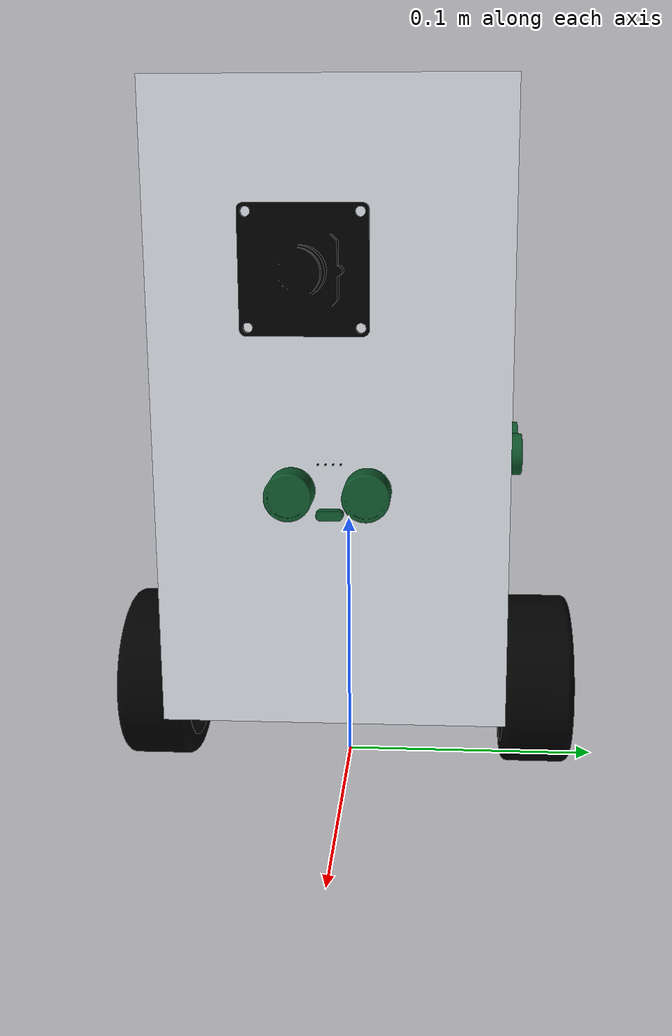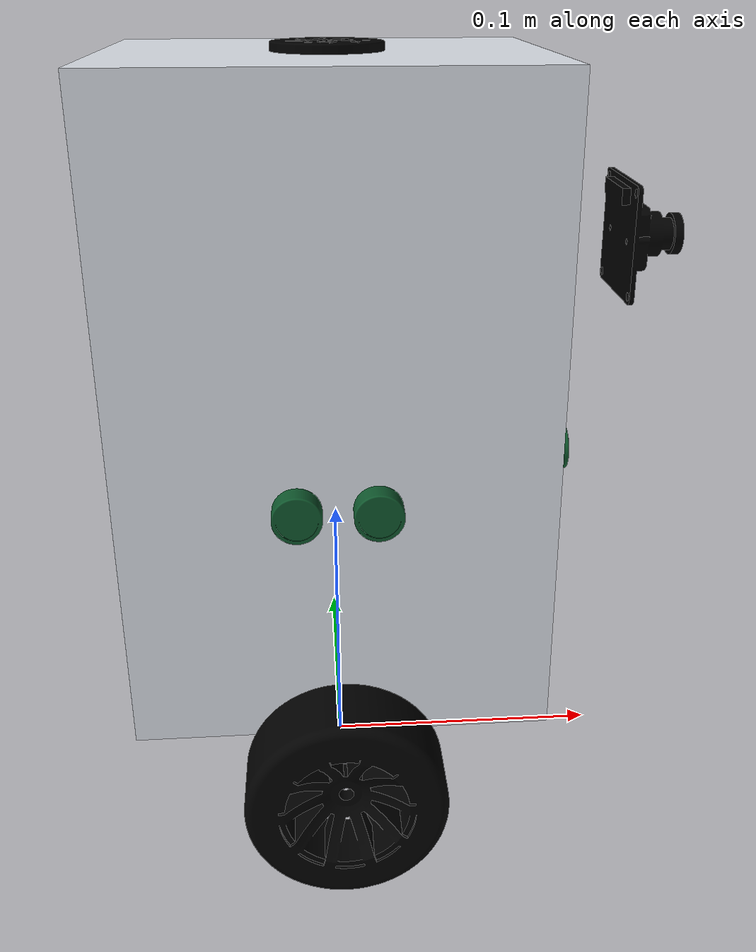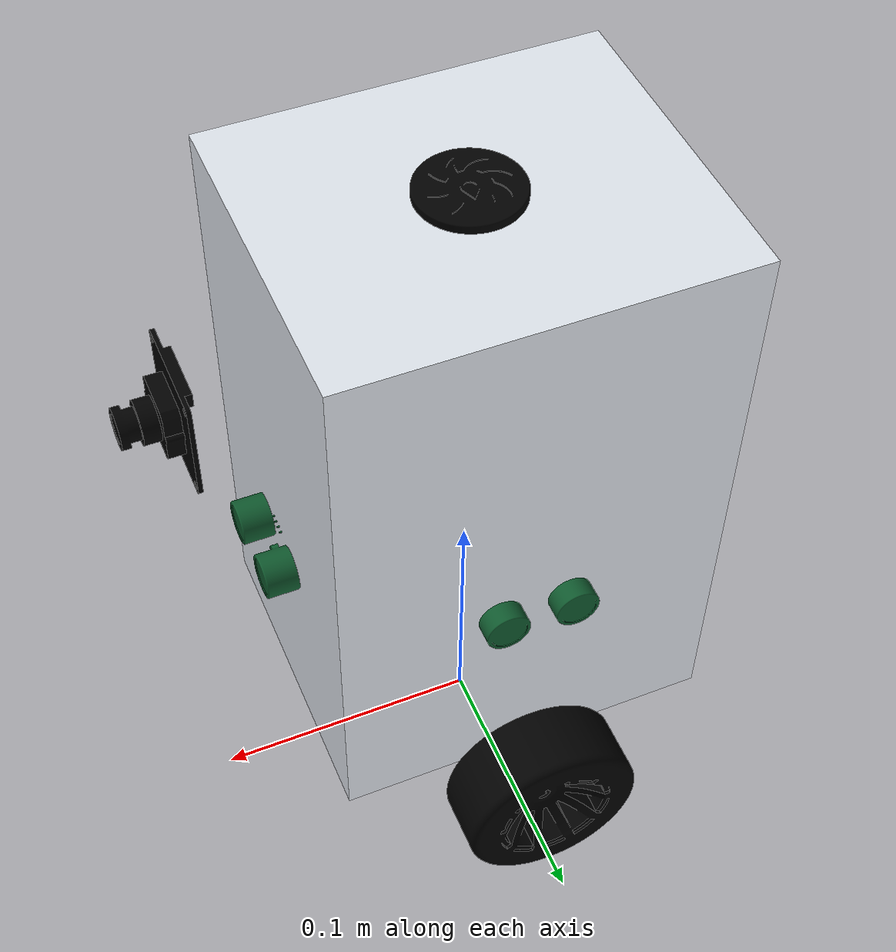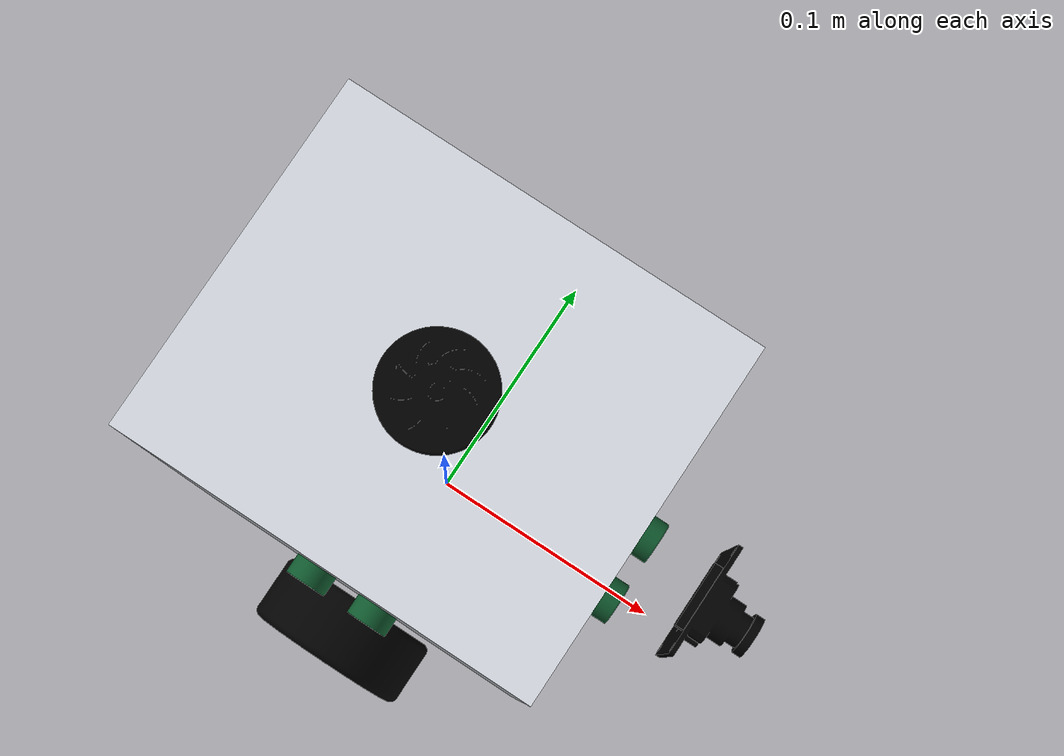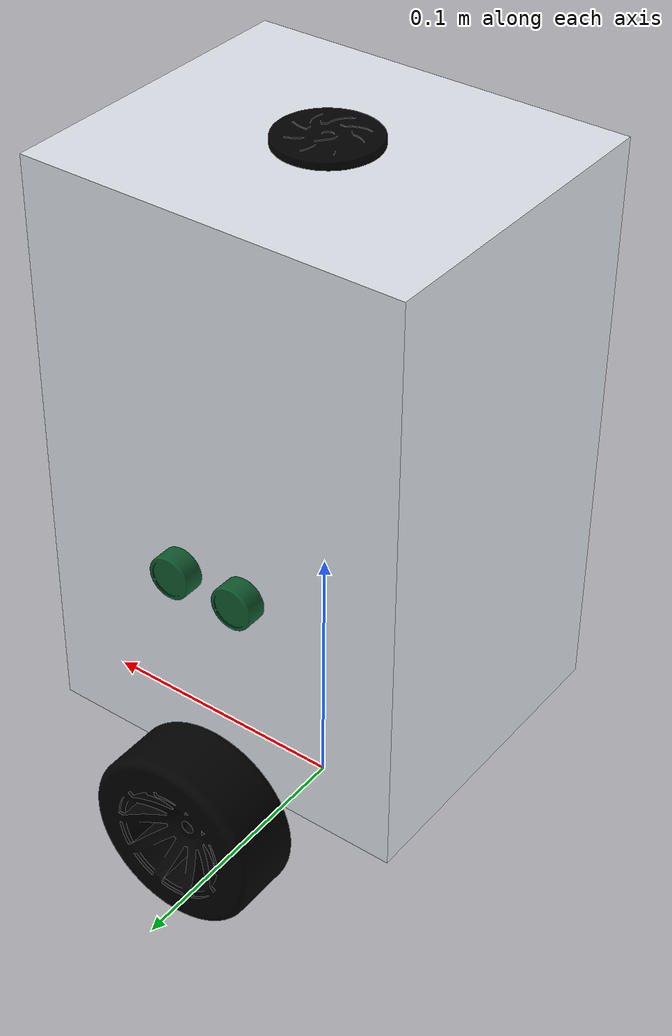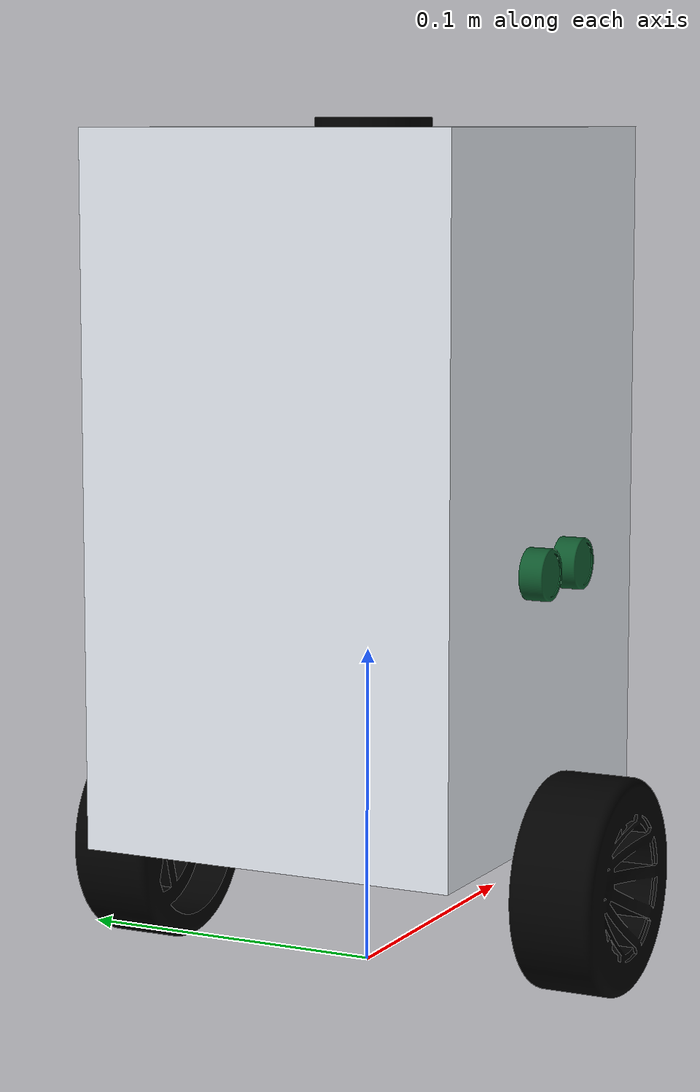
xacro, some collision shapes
<?xml version="1.0" encoding="UTF-8"?>

<robot name="pivot" xmlns:xacro="http://www.ros.org/wiki/xacro">

  <xacro:include filename="$(find pivot_description)/urdf/pivot_gazebo.xacro"/>
  <xacro:include filename="$(find pivot_description)/urdf/pivot_sensors.xacro"/>
  <xacro:include filename="$(find pivot_description)/urdf/pivot_control.xacro"/>

  <link name="base_footprint"/>
<!-- base link n joint-->

    <link name="base_link">

    <visual>
      <origin xyz="0 0 0" rpy="0 0 1.5708" />
      <geometry>
        <mesh filename="package://pivot_description/meshes/base_link.stl" />
      </geometry>
     <material name="chrome">
        <color rgba="0.88 0.90 0.93 1.0"/>
     </material>
    </visual>

        <inertial>
      <origin xyz="0 0 0.0583" rpy="0 0 0"/>
      <mass value="1.225"/>
      <inertia ixx="0.00699" iyy="0.00657" izz="0.00227"
               ixy="0" ixz="0" iyz="0"/>
    </inertial>

    <collision>
  <origin xyz="0 0 0.0895" rpy="0 0 0" />
<geometry>
  <box size="0.14128 0.120 0.217"/>
</geometry>
</collision>

  </link>

  <joint name="base_joint" type="fixed">
    <parent link="base_footprint"/>
    <child link="base_link" />
    <origin xyz="0 0 0.064" rpy="0 0 0"/>
  </joint>

<!-- right wheel n joint-->

  <link name="right_wheel_link">

    <visual>
      <origin xyz="0 0 0" rpy="0 0 1.5708" />
      <geometry>
        <mesh filename="package://pivot_description/meshes/right_wheel_link.stl" />
      </geometry>
           <material name="black">
        <color rgba="0.0 0.0 0.0 1.0"/>
     </material>
    </visual>

        <inertial>
      <origin xyz="0 0 0" rpy="0 0 0"/>
      <mass value="0.0988"/>
      <inertia ixx="3.74e-5" iyy="6.60e-5" izz="3.74e-5"
               ixy="0" ixz="0" iyz="0"/>
    </inertial>

    <collision>
      <origin xyz="0 0 0" rpy="1.5708 0 0" />
      <geometry>
        <cylinder radius="0.0335" length="0.027"/>
      </geometry>
    </collision>

  </link>

  <joint name="right_wheel_joint" type="continuous">
    <origin xyz="0 -0.079 -0.0305" rpy="0 0 0" />
    <parent link="base_link" />
    <child link="right_wheel_link" />
    <axis xyz="0 1 0" />
        <dynamics damping="${motor_profile['joint_damping']}"
                  friction="${motor_profile['joint_friction']}"/>
  </joint>

  <!-- left wheel n joint-->

  <link
    name="left_wheel_link">

    <visual>
      <origin xyz="0 0 0" rpy="0 0 1.5708" />
      <geometry>
        <mesh filename="package://pivot_description/meshes/left_wheel_link.stl" />
      </geometry>
                 <material name="black">
        <color rgba="0.0 0.0 0.0 1.0"/>
     </material>
    </visual>

        <inertial>
      <origin xyz="0 0 0" rpy="0 0 0"/>
      <mass value="0.0988"/>
      <inertia ixx="3.74e-5" iyy="6.60e-5" izz="3.74e-5"
               ixy="0" ixz="0" iyz="0"/>
    </inertial>

    <collision>
      <origin xyz="0 0 0" rpy="1.5708 0 0" />
      <geometry>
        <cylinder radius="0.0335" length="0.027"/>
      </geometry>
    </collision>

  </link>

  <joint name="left_wheel_joint" type="continuous">
    <origin xyz="0 0.079 -0.0305" rpy="0 0 0" />
    <parent link="base_link" />
    <child link="left_wheel_link" />
    <axis xyz="0 1 0" />
        <dynamics damping="${motor_profile['joint_damping']}"
                  friction="${motor_profile['joint_friction']}"/>
  </joint>

     <!-- imu n joint-->

  <link name="imu_link">
    <inertial>
      <origin xyz="0 0 0" rpy="0 0 0"/>
      <mass value="1e-5"/>
      <inertia ixx="1e-9" iyy="1e-9" izz="1e-9"
               ixy="0" ixz="0" iyz="0"/>
    </inertial>
  </link>

  <joint name="imu_joint" type="fixed">
    <origin xyz="0 0 0" rpy="0 0 0" />
    <parent link="base_link" />
    <child link="imu_link" />
  </joint>

  <!-- lidar n joint-->

  <link
    name="lidar_link">

    <visual>
      <origin xyz="0 0 0" rpy="0 0 1.5708" />
      <geometry>
        <mesh filename="package://pivot_description/meshes/lidar_link.stl" />
      </geometry>
                 <material name="black">
        <color rgba="0.0 0.0 0.0 1.0"/>
     </material>
    </visual>

        <inertial>
      <origin xyz="0 0 0" rpy="0 0 0"/>
      <mass value="1e-5"/>
      <inertia ixx="1e-9" iyy="1e-9" izz="1e-9"
               ixy="0" ixz="0" iyz="0"/>
    </inertial>
  </link>

  <joint name="lidar_joint" type="fixed">
    <origin xyz="0.00079 -0.0014 0.18515" rpy="0 0 0" />
    <parent link="base_link" />
    <child link="lidar_link" />
  </joint>

 <!-- camera n joint-->

  <link
    name="camera_link">

    <visual>
      <origin xyz="0 0 0" rpy="0 0 1.5708" />
      <geometry>
        <mesh filename="package://pivot_description/meshes/camera_link.stl" />
      </geometry>
                 <material name="black">
        <color rgba="0.0 0.0 0.0 1.0"/>
     </material>
    </visual>

        <inertial>
      <origin xyz="0 0 0" rpy="0 0 0"/>
      <mass value="1e-5"/>
      <inertia ixx="1e-9" iyy="1e-9" izz="1e-9"
               ixy="0" ixz="0" iyz="0"/>
    </inertial>

  </link>

  <joint name="camera_joint" type="fixed">
    <origin xyz="0.11826 -0.0045 0.13872" rpy="0 0 0" />
    <parent link="base_link" />
    <child link="camera_link" />
  </joint>

  <!-- front_sonic n joint-->

  <link
    name="ultrasonic_front_link">

    <visual>
      <origin xyz="0 0 0" rpy="0 0 1.5708" />
      <geometry>
        <mesh filename="package://pivot_description/meshes/front_sonic_link.stl" />
      </geometry>
                 <material name="pcb_green">
        <color rgba="0.06 0.35 0.18 1.0"/>
     </material>
    </visual>

        <inertial>
      <origin xyz="0 0 0" rpy="0 0 0"/>
      <mass value="1e-5"/>
      <inertia ixx="1e-9" iyy="1e-9" izz="1e-9"
               ixy="0" ixz="0" iyz="0"/>
    </inertial>

  </link>

  <joint name="ultrasonic_front_joint" type="fixed">
    <origin xyz="0.06698 0 0.0645" rpy="0 0 0" />
    <parent link="base_link" />
    <child link="ultrasonic_front_link" />
  </joint>

  <!-- right_sonic n joint-->

  <link
    name="ultrasonic_right_link">

    <visual>
      <origin xyz="0 0 0" rpy="0 0 1.5708" />
      <geometry>
        <mesh filename="package://pivot_description/meshes/right_sonic_link.stl" />
      </geometry>
                 <material name="pcb_green">
        <color rgba="0.06 0.35 0.18 1.0"/>
     </material>
    </visual>

        <inertial>
      <origin xyz="0 0 0" rpy="0 0 0"/>
      <mass value="1e-5"/>
      <inertia ixx="1e-9" iyy="1e-9" izz="1e-9"
               ixy="0" ixz="0" iyz="0"/>
    </inertial>

  </link>

  <joint name="ultrasonic_right_joint" type="fixed">
    <origin xyz="0 -0.05245 0.0657" rpy="0 0 0" />
    <parent link="base_link" />
    <child link="ultrasonic_right_link" />
  </joint>

  <!-- left_sonic n joint-->

  <link
    name="ultrasonic_left_link">

    <visual>
      <origin xyz="0 0 0" rpy="0 0 1.5708" />
      <geometry>
        <mesh filename="package://pivot_description/meshes/left_sonic_link.stl" />
      </geometry>
                 <material name="pcb_green">
        <color rgba="0.06 0.35 0.18 1.0"/>
     </material>
    </visual>

        <inertial>
      <origin xyz="0 0 0" rpy="0 0 0"/>
      <mass value="1e-5"/>
      <inertia ixx="1e-9" iyy="1e-9" izz="1e-9"
               ixy="0" ixz="0" iyz="0"/>
    </inertial>

  </link>

  <joint name="ultrasonic_left_joint" type="fixed">
    <origin xyz="0 0.05245 0.0657" rpy="0 0 0" />
    <parent link="base_link" />
    <child link="ultrasonic_left_link" />
  </joint>

  </robot>

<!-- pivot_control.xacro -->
<robot name="pivot" xmlns:xacro="http://www.ros.org/wiki/xacro">

  <xacro:property name="motor_profile"
    value="${xacro.load_yaml('$(find pivot_hardware)/config/md520z30.yaml')}"/>

  <ros2_control name="GazeboSystem" type="system">

    <hardware>
      <plugin>pivot_hardware/YahboomMotorSystem</plugin>
      <param name="nominal_voltage">${motor_profile['nominal_voltage']}</param>
      <param name="supply_voltage">${motor_profile['supply_voltage']}</param>
      <param name="stall_torque">${motor_profile['stall_torque']}</param>
      <param name="torque_limit">${motor_profile['torque_limit']}</param>
      <param name="reference_rpm">${motor_profile['reference_rpm']}</param>
      <param name="encoder_counts">${motor_profile['encoder_counts']}</param>
    </hardware>

    <joint name="left_wheel_joint">
      <command_interface name="effort">
        <param name="min">${-motor_profile['torque_limit']}</param>
        <param name="max">${motor_profile['torque_limit']}</param>
      </command_interface>
      <state_interface name="position"/>
      <state_interface name="velocity"/>
      <state_interface name="effort"/>
    </joint>

    <joint name="right_wheel_joint">
      <command_interface name="effort">
        <param name="min">${-motor_profile['torque_limit']}</param>
        <param name="max">${motor_profile['torque_limit']}</param>
      </command_interface>
      <state_interface name="position"/>
      <state_interface name="velocity"/>
      <state_interface name="effort"/>
    </joint>

  </ros2_control>

  <!-- Controller manager runs inside Gazebo, reading its config
       from the pivot_control package. -->

  <gazebo>
    <plugin filename="gz_ros2_control-system"
            name="gz_ros2_control::GazeboSimROS2ControlPlugin">
      <parameters>$(find pivot_control)/config/pivot_controllers.yaml</parameters>
    </plugin>
  </gazebo>

</robot>
